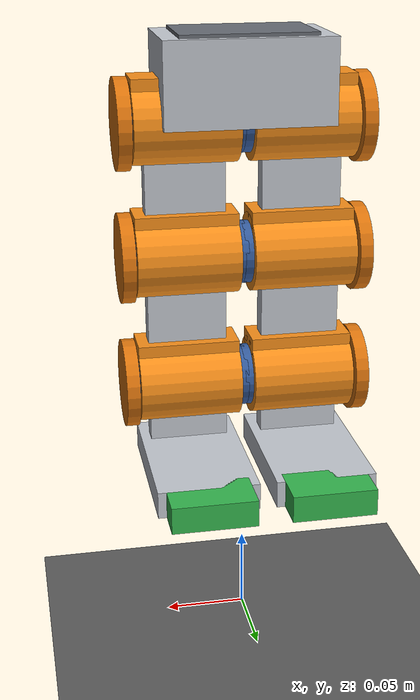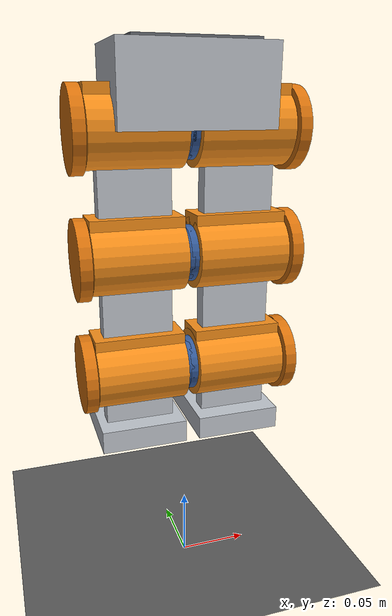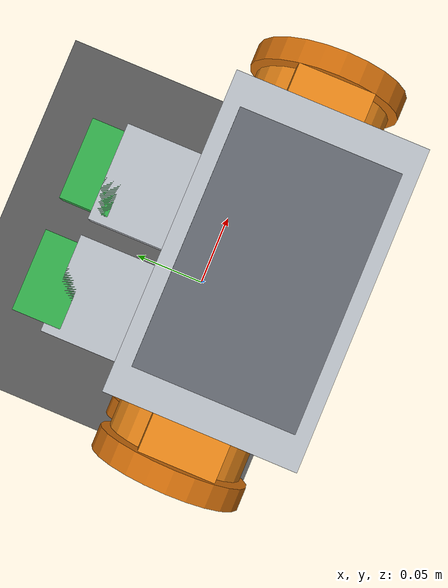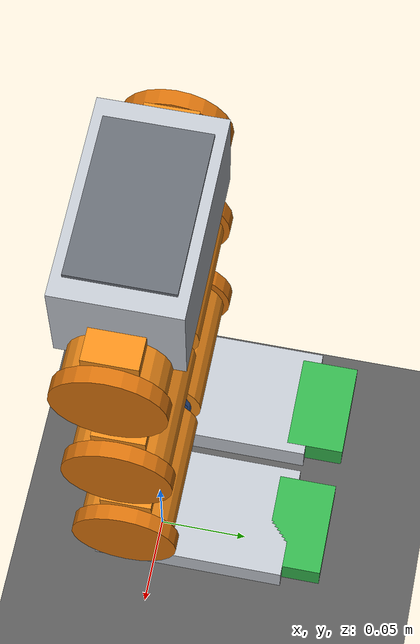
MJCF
<mujoco model="beewalker">

  <compiler angle="degree" inertiafromgeom="true"/>

  <default>
    <joint armature="0.01" damping="0.1" limited="true"/>
    <geom conaffinity="0" condim="3" contype="1" density="1250" friction="0.8 0.1 0.1"/>
    <motor ctrllimited="true" ctrlrange="-1.0 1.0"/>
  </default>

  <option integrator="RK4" timestep="0.002"/>

  <asset>
    <texture type="skybox" builtin="gradient" rgb1="0.4 0.6 0.8" rgb2="0.1 0.1 0.2" width="100" height="100"/>
    <texture builtin="checker" height="100" name="texplane" rgb1="0.3 0.3 0.3" rgb2="0.4 0.4 0.4" type="2d" width="100"/>
    <material name="MatPlane" reflectance="0.3" texrepeat="30 30" texture="texplane"/>

    <!-- BeeBot materials -->
    <material name="servo_orange" rgba="0.95 0.55 0.1 1" specular="0.5" shininess="0.5"/>
    <material name="servo_face_blue" rgba="0.2 0.35 0.6 1" specular="0.4" shininess="0.4"/>
    <material name="bracket_gray" rgba="0.75 0.77 0.8 1" specular="0.3" shininess="0.3"/>
    <material name="ring_orange" rgba="0.85 0.45 0.05 1" specular="0.6" shininess="0.6"/>
    <material name="foot_green" rgba="0.2 0.7 0.3 1" specular="0.5" shininess="0.6"/>
  </asset>

  <worldbody>
    <light cutoff="100" diffuse="1 1 1" dir="0 0 -1.3" directional="true" pos="0 0 1.3" specular="0.1 0.1 0.1"/>
    <geom conaffinity="1" condim="3" name="floor" pos="0 0 0" size="40 40 0.1" type="plane" material="MatPlane"/>

    <!-- TORSO at height ~0.35m (scaled from Walker2d's 1.25m) -->
    <body name="torso" pos="0 0 0.35">
      <camera name="track" mode="trackcom" pos="0 -1 0" xyaxes="1 0 0 0 0 1"/>

      <!-- Root joints for free planar movement -->
      <joint armature="0" axis="1 0 0" damping="0" limited="false" name="rootx" pos="0 0 -0.35" stiffness="0" type="slide"/>
      <joint armature="0" axis="0 0 1" damping="0" limited="false" name="rootz" pos="0 0 -0.35" ref="0.35" stiffness="0" type="slide"/>
      <joint armature="0" axis="0 1 0" damping="0" limited="false" name="rooty" pos="0 0 0" stiffness="0" type="hinge"/>

      <!-- Torso geometry -->
      <geom name="torso_main" type="box" size="0.05 0.03 0.025" material="bracket_gray"/>
      <geom name="torso_top" type="box" pos="0 0 0.022" size="0.04 0.025 0.005" rgba="0.4 0.42 0.45 1"/>

      <!-- ========== RIGHT LEG ========== -->
      <body name="thigh" pos="0.035 0 -0.025">
        <joint axis="0 -1 0" name="thigh_joint" pos="0 0 0" range="-90 90" type="hinge"/>

        <!-- Hip servo module -->
        <geom name="r_hip_servo" type="cylinder" size="0.024 0.031" euler="0 90 0" material="servo_orange"/>
        <geom name="r_hip_cap" type="box" pos="0 0 0.022" size="0.031 0.013 0.005" material="servo_orange"/>
        <geom name="r_hip_face_r" type="cylinder" pos="0.033 0 0" size="0.019 0.003" euler="0 90 0" material="servo_face_blue"/>
        <geom name="r_hip_face_l" type="cylinder" pos="-0.033 0 0" size="0.019 0.003" euler="0 90 0" material="servo_face_blue"/>
        <geom name="r_hip_ring" type="cylinder" pos="0.036 0 0" size="0.027 0.004" euler="0 90 0" material="ring_orange" contype="0" conaffinity="0"/>

        <!-- Bracket down to knee -->
        <geom name="r_hip_bracket" type="box" pos="0 0 -0.045" size="0.024 0.006 0.025" material="bracket_gray"/>

        <body name="leg" pos="0 0 -0.08">
          <joint axis="0 -1 0" name="leg_joint" pos="0 0 0" range="-90 90" type="hinge"/>

          <!-- Knee servo module -->
          <geom name="r_knee_servo" type="cylinder" size="0.024 0.031" euler="0 90 0" material="servo_orange"/>
          <geom name="r_knee_cap" type="box" pos="0 0 0.022" size="0.031 0.013 0.005" material="servo_orange"/>
          <geom name="r_knee_face_r" type="cylinder" pos="0.033 0 0" size="0.019 0.003" euler="0 90 0" material="servo_face_blue"/>
          <geom name="r_knee_face_l" type="cylinder" pos="-0.033 0 0" size="0.019 0.003" euler="0 90 0" material="servo_face_blue"/>
          <geom name="r_knee_ring" type="cylinder" pos="0.036 0 0" size="0.027 0.004" euler="0 90 0" material="ring_orange" contype="0" conaffinity="0"/>

          <!-- Bracket down to ankle -->
          <geom name="r_knee_bracket" type="box" pos="0 0 -0.045" size="0.024 0.006 0.025" material="bracket_gray"/>

          <body name="foot" pos="0 0 -0.08">
            <joint axis="0 -1 0" name="foot_joint" pos="0 0 0" range="-45 45" type="hinge"/>

            <!-- Ankle servo module -->
            <geom name="r_ankle_servo" type="cylinder" size="0.024 0.031" euler="0 90 0" material="servo_orange"/>
            <geom name="r_ankle_cap" type="box" pos="0 0 0.022" size="0.031 0.013 0.005" material="servo_orange"/>
            <geom name="r_ankle_face_r" type="cylinder" pos="0.033 0 0" size="0.019 0.003" euler="0 90 0" material="servo_face_blue"/>
            <geom name="r_ankle_face_l" type="cylinder" pos="-0.033 0 0" size="0.019 0.003" euler="0 90 0" material="servo_face_blue"/>
            <geom name="r_ankle_ring" type="cylinder" pos="0.036 0 0" size="0.027 0.004" euler="0 90 0" material="ring_orange" contype="0" conaffinity="0"/>

            <!-- Foot -->
            <geom name="r_foot_bracket" type="box" pos="0 0 -0.025" size="0.024 0.006 0.015" material="bracket_gray"/>
            <geom name="r_foot_base" type="box" pos="0 0.03 -0.045" size="0.03 0.05 0.008" material="bracket_gray" friction="0.9"/>
            <geom name="r_foot_toe" type="box" pos="0 0.085 -0.045" size="0.025 0.015 0.008" material="foot_green" friction="0.9"/>
          </body>
        </body>
      </body>

      <!-- ========== LEFT LEG ========== -->
      <body name="thigh_left" pos="-0.035 0 -0.025">
        <joint axis="0 -1 0" name="thigh_left_joint" pos="0 0 0" range="-90 90" type="hinge"/>

        <!-- Hip servo module -->
        <geom name="l_hip_servo" type="cylinder" size="0.024 0.031" euler="0 90 0" material="servo_orange"/>
        <geom name="l_hip_cap" type="box" pos="0 0 0.022" size="0.031 0.013 0.005" material="servo_orange"/>
        <geom name="l_hip_face_r" type="cylinder" pos="0.033 0 0" size="0.019 0.003" euler="0 90 0" material="servo_face_blue"/>
        <geom name="l_hip_face_l" type="cylinder" pos="-0.033 0 0" size="0.019 0.003" euler="0 90 0" material="servo_face_blue"/>
        <geom name="l_hip_ring" type="cylinder" pos="-0.036 0 0" size="0.027 0.004" euler="0 90 0" material="ring_orange" contype="0" conaffinity="0"/>

        <!-- Bracket down to knee -->
        <geom name="l_hip_bracket" type="box" pos="0 0 -0.045" size="0.024 0.006 0.025" material="bracket_gray"/>

        <body name="leg_left" pos="0 0 -0.08">
          <joint axis="0 -1 0" name="leg_left_joint" pos="0 0 0" range="-90 90" type="hinge"/>

          <!-- Knee servo module -->
          <geom name="l_knee_servo" type="cylinder" size="0.024 0.031" euler="0 90 0" material="servo_orange"/>
          <geom name="l_knee_cap" type="box" pos="0 0 0.022" size="0.031 0.013 0.005" material="servo_orange"/>
          <geom name="l_knee_face_r" type="cylinder" pos="0.033 0 0" size="0.019 0.003" euler="0 90 0" material="servo_face_blue"/>
          <geom name="l_knee_face_l" type="cylinder" pos="-0.033 0 0" size="0.019 0.003" euler="0 90 0" material="servo_face_blue"/>
          <geom name="l_knee_ring" type="cylinder" pos="-0.036 0 0" size="0.027 0.004" euler="0 90 0" material="ring_orange" contype="0" conaffinity="0"/>

          <!-- Bracket down to ankle -->
          <geom name="l_knee_bracket" type="box" pos="0 0 -0.045" size="0.024 0.006 0.025" material="bracket_gray"/>

          <body name="foot_left" pos="0 0 -0.08">
            <joint axis="0 -1 0" name="foot_left_joint" pos="0 0 0" range="-45 45" type="hinge"/>

            <!-- Ankle servo module -->
            <geom name="l_ankle_servo" type="cylinder" size="0.024 0.031" euler="0 90 0" material="servo_orange"/>
            <geom name="l_ankle_cap" type="box" pos="0 0 0.022" size="0.031 0.013 0.005" material="servo_orange"/>
            <geom name="l_ankle_face_r" type="cylinder" pos="0.033 0 0" size="0.019 0.003" euler="0 90 0" material="servo_face_blue"/>
            <geom name="l_ankle_face_l" type="cylinder" pos="-0.033 0 0" size="0.019 0.003" euler="0 90 0" material="servo_face_blue"/>
            <geom name="l_ankle_ring" type="cylinder" pos="-0.036 0 0" size="0.027 0.004" euler="0 90 0" material="ring_orange" contype="0" conaffinity="0"/>

            <!-- Foot -->
            <geom name="l_foot_bracket" type="box" pos="0 0 -0.025" size="0.024 0.006 0.015" material="bracket_gray"/>
            <geom name="l_foot_base" type="box" pos="0 0.03 -0.045" size="0.03 0.05 0.008" material="bracket_gray" friction="0.9"/>
            <geom name="l_foot_toe" type="box" pos="0 0.085 -0.045" size="0.025 0.015 0.008" material="foot_green" friction="0.9"/>
          </body>
        </body>
      </body>

    </body>
  </worldbody>

  <!-- Actuators: MG996R ~1.1 Nm, gear=100 matches Walker2d scaling -->
  <actuator>
    <motor joint="thigh_joint" gear="100"/>
    <motor joint="leg_joint" gear="100"/>
    <motor joint="foot_joint" gear="100"/>
    <motor joint="thigh_left_joint" gear="100"/>
    <motor joint="leg_left_joint" gear="100"/>
    <motor joint="foot_left_joint" gear="100"/>
  </actuator>
</mujoco>
